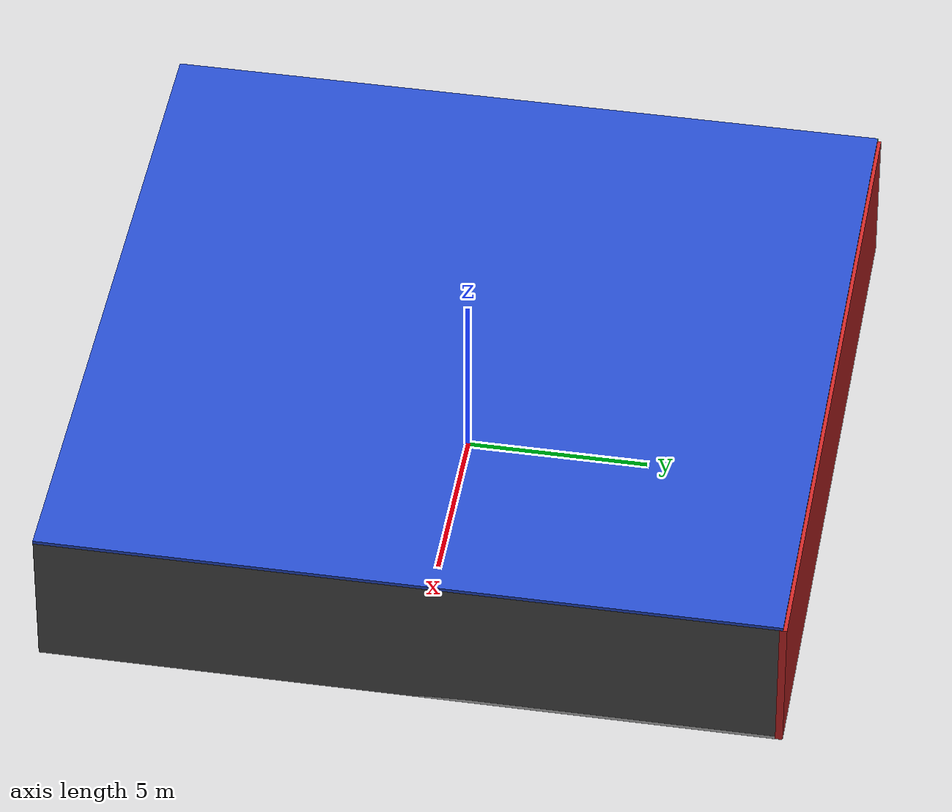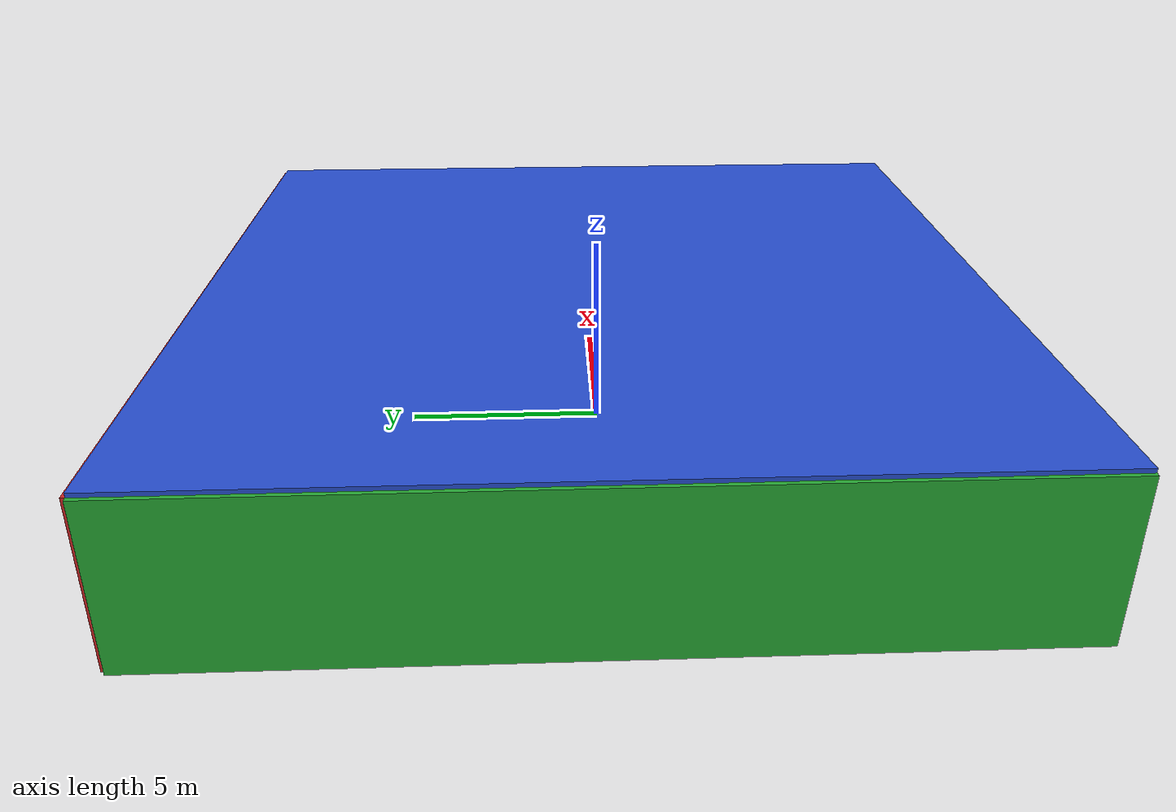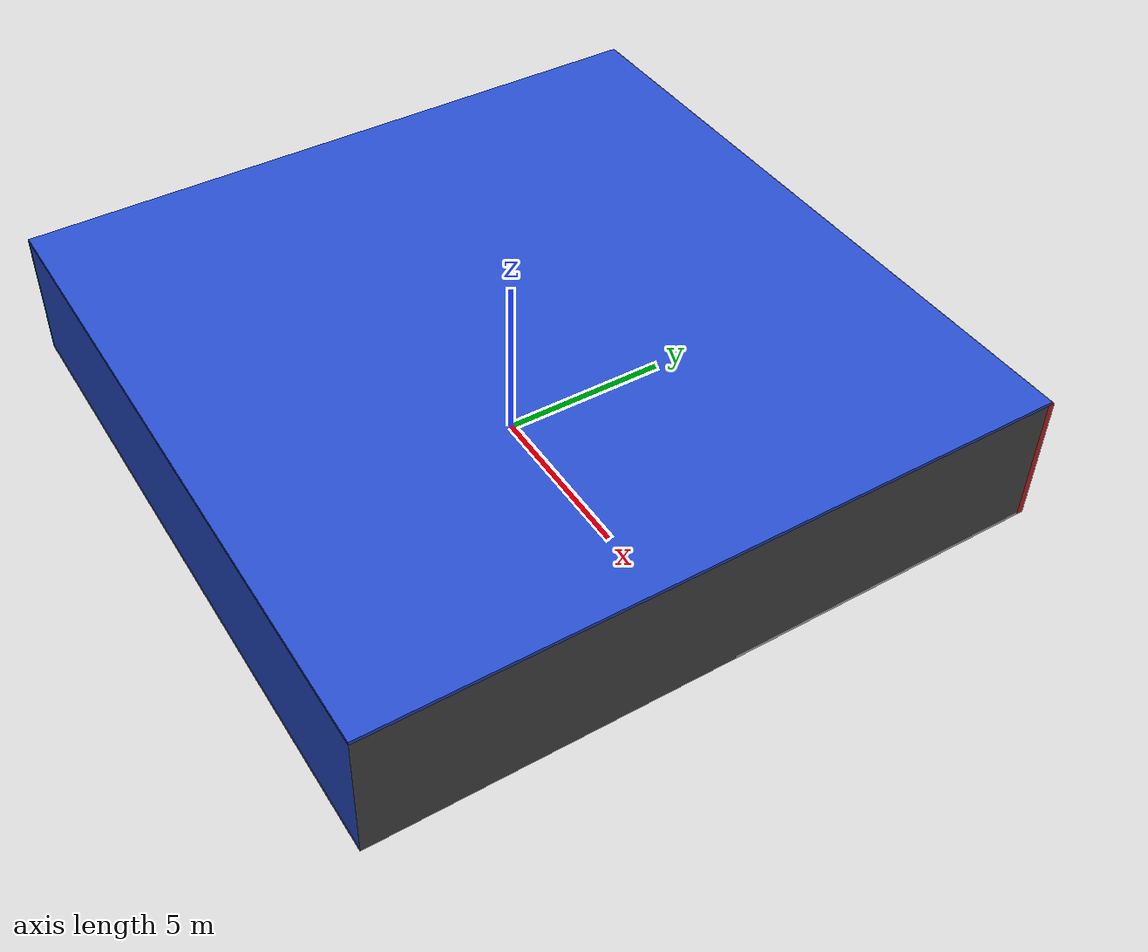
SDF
<sdf version="1.4">
 <world name="default">
  <physics type="ode">
   <max_step_size>0.001</max_step_size>
   <real_time_factor>1</real_time_factor>
   <real_time_update_rate>1000</real_time_update_rate>
   <gravity>0 0 -9.8</gravity>
  </physics>
  <scene><ambient>0.4 0.4 0.4 1</ambient><background>0.7 0.7 0.7 1</background><shadows>1</shadows></scene>
  <model name="Surrounding">
   <static>1</static>
   <link name="Ceiling">
    <collision name="Ceiling_Collision"><geometry><box><size>20 20 0.1</size></box></geometry></collision>
    <visual name="Ceiling_Visual">
     <geometry><box><size>20 20 0.1</size></box></geometry>
     <material>
      <script><uri>file://media/materials/scripts/gazebo.material</uri><name>Gazebo/BlueLaser</name></script>
     </material>
    </visual>
    <pose>0 0 4.05 0 0 0</pose>
   </link>
   <link name="Wall_South">
    <collision name="Wall_South_Collision">
     <geometry><box><size>20 0 4</size></box></geometry>
     <pose>0 0 2 0 -0 0</pose>
    </collision>
    <visual name="Wall_South_Visual">
     <pose>0 0 2 0 -0 0</pose>
     <geometry><box><size>20 0 4</size></box></geometry>
     <material>
      <script><uri>file://media/materials/scripts/gazebo.material</uri><name>Gazebo/BlueGlow</name></script>
     </material>
    </visual>
    <velocity_decay><linear>0</linear><angular>0</angular></velocity_decay>
    <pose>0 -10 0 0 -0 0</pose>
   </link>
   <link name="Wall_East">
    <collision name="Wall_21_Collision">
     <geometry><box><size>20 0 4</size></box></geometry>
     <pose>0 0 2 0 -0 0</pose>
    </collision>
    <visual name="Wall_21_Visual">
     <pose>0 0 2 0 -0 0</pose>
     <geometry><box><size>20 0 4</size></box></geometry>
     <material>
      <script><uri>file://media/materials/scripts/gazebo.material</uri><name>Gazebo/Road</name></script>
     </material>
    </visual>
    <velocity_decay><linear>0</linear><angular>0</angular></velocity_decay>
    <pose>10 0 0 0 -0 1.5708</pose>
   </link>
   <link name="Wall_North">
    <collision name="Wall_22_Collision">
     <geometry><box><size>20 0.2 4</size></box></geometry>
     <pose>0 0 2 0 -0 0</pose>
    </collision>
    <visual name="Wall_22_Visual">
     <pose>0 0 2 0 -0 0</pose>
     <geometry><box><size>20 0.2 4</size></box></geometry>
     <material>
      <script><uri>file://media/materials/scripts/gazebo.material</uri><name>Gazebo/Red</name></script>
     </material>
    </visual>
    <velocity_decay><linear>0</linear><angular>0</angular></velocity_decay>
    <pose>0 10 0 0 -0 0</pose>
   </link>
   <link name="Wall_West">
    <collision name="Wall_23_Collision">
     <geometry><box><size>20 0.2 4</size></box></geometry>
     <pose>0 0 2 0 -0 0</pose>
    </collision>
    <visual name="Wall_23_Visual">
     <pose>0 0 2 0 -0 0</pose>
     <geometry><box><size>20 0.2 4</size></box></geometry>
     <material>
      <script><uri>file://media/materials/scripts/gazebo.material</uri><name>Gazebo/GreenGlow</name></script>
     </material>
    </visual>
    <velocity_decay><linear>0</linear><angular>0</angular></velocity_decay>
    <pose>-10 0 0 0 0 -1.5708</pose>
   </link>
   <link name="Ground_link">
    <collision name="collision">
     <pose>0 0 .05 0 -0 0</pose>
     <geometry><box><size>20 20 0.1</size></box></geometry>
    </collision>
    <visual name="visual">
     <pose>0 0 .05 0 -0 0</pose>
     <geometry><box><size>20 20 0.1</size></box></geometry>
     <material>
      <script><uri>file://media/materials/scripts/gazebo.material</uri><name>Gazebo/LightOn</name></script>
     </material>
    </visual>
   </link>
   <static>1</static>
  </model>
  <spherical_coordinates>
   <surface_model>EARTH_WGS84</surface_model>
   <latitude_deg>0</latitude_deg>
   <longitude_deg>0</longitude_deg>
   <elevation>0</elevation>
   <heading_deg>0</heading_deg>
  </spherical_coordinates>
  <light name="lightball_0" type="diffuse">
   <diffuse>0.8 0.8 0.8 1</diffuse>
   <specular>0.2 0.2 0.2 1</specular>
   <attenuation>
    <range>100</range>
    <constant>0.7</constant>
    <linear>0.01</linear>
    <quadratic>0.001</quadratic>
   </attenuation>
   <direction>-0.5 0.1 -0.9</direction>
   <pose>-8.6334099551 9.20731109845 2.46612859043 0 0 0</pose>
  </light>
  <light name="lightball_1" type="diffuse">
   <diffuse>0.8 0.8 0.8 1</diffuse>
   <specular>0.2 0.2 0.2 1</specular>
   <attenuation>
    <range>100</range>
    <constant>0.7</constant>
    <linear>0.01</linear>
    <quadratic>0.001</quadratic>
   </attenuation>
   <direction>-0.5 0.1 -0.9</direction>
   <pose>-6.05711461969 -2.24850091929 3.64438718825 0 0 0</pose>
  </light>
  <light name="lightball_2" type="diffuse">
   <diffuse>0.8 0.8 0.8 1</diffuse>
   <specular>0.2 0.2 0.2 1</specular>
   <attenuation>
    <range>100</range>
    <constant>0.7</constant>
    <linear>0.01</linear>
    <quadratic>0.001</quadratic>
   </attenuation>
   <direction>-0.5 0.1 -0.9</direction>
   <pose>3.90489572967 3.96948739658 3.86165478081 0 0 0</pose>
  </light>
  <light name="lightball_3" type="diffuse">
   <diffuse>0.8 0.8 0.8 1</diffuse>
   <specular>0.2 0.2 0.2 1</specular>
   <attenuation>
    <range>100</range>
    <constant>0.7</constant>
    <linear>0.01</linear>
    <quadratic>0.001</quadratic>
   </attenuation>
   <direction>-0.5 0.1 -0.9</direction>
   <pose>-4.87427902895 -8.0400472073 2.87131200823 0 0 0</pose>
  </light>
  <light name="lightball_4" type="diffuse">
   <diffuse>0.8 0.8 0.8 1</diffuse>
   <specular>0.2 0.2 0.2 1</specular>
   <attenuation>
    <range>100</range>
    <constant>0.7</constant>
    <linear>0.01</linear>
    <quadratic>0.001</quadratic>
   </attenuation>
   <direction>-0.5 0.1 -0.9</direction>
   <pose>-2.21948049031 9.77558794223 2.53749981113 0 0 0</pose>
  </light>
  <light name="lightball_5" type="diffuse">
   <diffuse>0.8 0.8 0.8 1</diffuse>
   <specular>0.2 0.2 0.2 1</specular>
   <attenuation>
    <range>100</range>
    <constant>0.7</constant>
    <linear>0.01</linear>
    <quadratic>0.001</quadratic>
   </attenuation>
   <direction>-0.5 0.1 -0.9</direction>
   <pose>-5.6820347953 8.86884372947 0.928926102078 0 0 0</pose>
  </light>
  <light name="lightball_6" type="diffuse">
   <diffuse>0.8 0.8 0.8 1</diffuse>
   <specular>0.2 0.2 0.2 1</specular>
   <attenuation>
    <range>100</range>
    <constant>0.7</constant>
    <linear>0.01</linear>
    <quadratic>0.001</quadratic>
   </attenuation>
   <direction>-0.5 0.1 -0.9</direction>
   <pose>1.52790947372 -0.167388188107 0.53232642741 0 0 0</pose>
  </light>
  <include><uri>model://table</uri><pose>-4.03846893729 -8.33158586849 0 0 0 1.57140923662</pose></include>
  <include><uri>model://table</uri><pose>-4.9918219471 -4.81929413042 0 0 0 2.58060150695</pose></include>
  <include><uri>model://table</uri><pose>-4.80935298761 1.8112649373 0 0 0 1.7105987579</pose></include>
  <include><uri>model://table</uri><pose>-1.82464239531 -5.60864599977 0 0 0 3.03877405706</pose></include>
  <include><uri>model://cabinet</uri><pose>-2.55956621134 -1.98110455075 0 0 0 1.86898794196</pose></include>
  <include>
   <uri>model://construction_cone</uri>
   <pose>3.75874966287 -3.81948308665 0 0 0 1.8938330405</pose>
  </include>
  <include><uri>model://table</uri><pose>4.3362838234 4.73071422407 0 0 0 0.760476583894</pose></include>
  <include><uri>model://table</uri><pose>6.31213097725 -7.88592934304 0 0 0 1.21468459233</pose></include>
 </world>
</sdf>

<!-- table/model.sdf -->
<sdf version="1.5">
  <model name="table">
    <static>true</static>
    <link name="link">
      <collision name="surface">
        <pose>0 0 1.0 0 0 0</pose>
        <geometry>
          <box>
            <size>1.5 0.8 0.03</size>
          </box>
        </geometry>
        <surface>
          <friction>
            <ode>
              <mu>0.6</mu>
              <mu2>0.6</mu2>
            </ode>
          </friction>
        </surface>
      </collision>
      <visual name="visual1">
        <pose>0 0 1.0 0 0 0</pose>
        <geometry>
          <box>
            <size>1.5 0.8 0.03</size>
          </box>
        </geometry>
        <material>
          <script>
            <uri>model://media/materials/scripts/gazebo.material</uri>
            <name>Gazebo/Wood</name>
          </script>
        </material>
      </visual>
      <collision name="front_left_leg">
        <pose>0.68 0.38 0.5 0 0 0</pose>
        <geometry>
          <cylinder>
            <radius>0.02</radius>
            <length>1.0</length>
          </cylinder>
        </geometry>
      </collision>
      <visual name="front_left_leg">
        <pose>0.68 0.38 0.5 0 0 0</pose>
        <geometry>
          <cylinder>
            <radius>0.02</radius>
            <length>1.0</length>
          </cylinder>
        </geometry>
        <material>
          <script>
            <uri>model://media/materials/scripts/gazebo.material</uri>
            <name>Gazebo/Grey</name>
          </script>
        </material>
      </visual>
      <collision name="front_right_leg">
        <pose>0.68 -0.38 0.5 0 0 0</pose>
        <geometry>
          <cylinder>
            <radius>0.02</radius>
            <length>1.0</length>
          </cylinder>
        </geometry>
      </collision>
      <visual name="front_right_leg">
        <pose>0.68 -0.38 0.5 0 0 0</pose>
        <geometry>
          <cylinder>
            <radius>0.02</radius>
            <length>1.0</length>
          </cylinder>
        </geometry>
        <material>
          <script>
            <uri>model://media/materials/scripts/gazebo.material</uri>
            <name>Gazebo/Grey</name>
          </script>
        </material>
      </visual>
      <collision name="back_right_leg">
        <pose>-0.68 -0.38 0.5 0 0 0</pose>
        <geometry>
          <cylinder>
            <radius>0.02</radius>
            <length>1.0</length>
          </cylinder>
        </geometry>
      </collision>
      <visual name="back_right_leg">
        <pose>-0.68 -0.38 0.5 0 0 0</pose>
        <geometry>
          <cylinder>
            <radius>0.02</radius>
            <length>1.0</length>
          </cylinder>
        </geometry>
        <material>
          <script>
            <uri>model://media/materials/scripts/gazebo.material</uri>
            <name>Gazebo/Grey</name>
          </script>
        </material>
      </visual>
      <collision name="back_left_leg">
        <pose>-0.68 0.38 0.5 0 0 0</pose>
        <geometry>
          <cylinder>
            <radius>0.02</radius>
            <length>1.0</length>
          </cylinder>
        </geometry>
      </collision>
      <visual name="back_left_leg">
        <pose>-0.68 0.38 0.5 0 0 0</pose>
        <geometry>
          <cylinder>
            <radius>0.02</radius>
            <length>1.0</length>
          </cylinder>
        </geometry>
        <material>
          <script>
            <uri>model://media/materials/scripts/gazebo.material</uri>
            <name>Gazebo/Grey</name>
          </script>
        </material>
      </visual>
    </link>
  </model>
</sdf>

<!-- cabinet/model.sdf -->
<sdf version="1.5">
  <model name="cabinet">
    <static>true</static>
    <link name="cabinet_bottom_plate">
      <inertial>
        <pose>0 0 -1 0 0 0</pose>
        <inertia>
          <ixx>2.050000</ixx>
          <ixy>0</ixy>
          <ixz>0</ixz>
          <iyy>2.050000</iyy>
          <iyz>0</iyz>
          <izz>2.050000</izz>
        </inertia>
        <mass>25.000000</mass>
      </inertial>
      <collision name="cabinet_bottom_plate_geom">
        <pose>0 0 0.010000 0 0 0</pose>
        <geometry>
          <box>
            <size>0.450000 0.450000 0.020000</size>
          </box>
        </geometry>
      </collision>
      <visual name="cabinet_bottom_plate_geom_visual">
        <pose>0 0 0.010000 0 0 0</pose>
        <geometry>
          <box>
            <size>0.450000 0.450000 0.020000</size>
          </box>
        </geometry>
        <material>
          <script>
            <uri>model://media/materials/scripts/gazebo.material</uri>
            <name>Gazebo/Wood</name>
          </script>
        </material>
      </visual>
      <collision name="cabinet_bottom_plate_geom_cabinet_back_plate">
        <pose>0.235000 0 0.510000 0 0 0</pose>
        <geometry>
          <box>
            <size>0.020000 0.450000 1.020000</size>
          </box>
        </geometry>
      </collision>
      <visual name="cabinet_bottom_plate_geom_cabinet_back_plate_visual">
        <pose>0.235000 0 0.510000 0 0 0</pose>
        <geometry>
          <box>
            <size>0.020000 0.450000 1.020000</size>
          </box>
        </geometry>
        <material>
          <script>
            <uri>model://media/materials/scripts/gazebo.material</uri>
            <name>Gazebo/Wood</name>
          </script>
        </material>
      </visual>
      <collision name="cabinet_bottom_plate_geom_cabinet_left_plate">
        <pose>0 0.235000 0.510000 0 0 0</pose>
        <geometry>
          <box>
            <size>0.450000 0.020000 1.020000</size>
          </box>
        </geometry>
      </collision>
      <visual name="cabinet_bottom_plate_geom_cabinet_left_plate_visual">
        <pose>0 0.235000 0.510000 0 0 0</pose>
        <geometry>
          <box>
            <size>0.450000 0.020000 1.020000</size>
          </box>
        </geometry>
        <material>
          <script>
            <uri>model://media/materials/scripts/gazebo.material</uri>
            <name>Gazebo/Wood</name>
          </script>
        </material>
      </visual>
      <collision name="cabinet_bottom_plate_geom_cabinet_middle_plate">
        <pose>0 0 0.510000 0 0 0</pose>
        <geometry>
          <box>
            <size>0.450000 0.450000 0.020000</size>
          </box>
        </geometry>
      </collision>
      <visual name="cabinet_bottom_plate_geom_cabinet_middle_plate_visual">
        <pose>0 0 0.510000 0 0 0</pose>
        <geometry>
          <box>
            <size>0.450000 0.450000 0.020000</size>
          </box>
        </geometry>
        <material>
          <script>
            <uri>model://media/materials/scripts/gazebo.material</uri>
            <name>Gazebo/Wood</name>
          </script>
        </material>
      </visual>
      <collision name="cabinet_bottom_plate_geom_cabinet_right_plate">
        <pose>0 -0.235000 0.510000 0 0 0</pose>
        <geometry>
          <box>
            <size>0.450000 0.020000 1.020000</size>
          </box>
        </geometry>
      </collision>
      <visual name="cabinet_bottom_plate_geom_cabinet_right_plate_visual">
        <pose>0 -0.235000 0.510000 0 0 0</pose>
        <geometry>
          <box>
            <size>0.450000 0.020000 1.020000</size>
          </box>
        </geometry>
        <material>
          <script>
            <uri>model://media/materials/scripts/gazebo.material</uri>
            <name>Gazebo/Wood</name>
          </script>
        </material>
      </visual>
      <collision name="cabinet_bottom_plate_geom_cabinet_top_plate">
        <pose>0 0 1.010000 0 0 0</pose>
        <geometry>
          <box>
            <size>0.450000 0.450000 0.020000</size>
          </box>
        </geometry>
      </collision>
      <visual name="cabinet_bottom_plate_geom_cabinet_top_plate_visual">
        <pose>0 0 1.010000 0 0 0</pose>
        <geometry>
          <box>
            <size>0.450000 0.450000 0.020000</size>
          </box>
        </geometry>
        <material>
          <script>
            <uri>model://media/materials/scripts/gazebo.material</uri>
            <name>Gazebo/Wood</name>
          </script>
        </material>
      </visual>
    </link>
  </model>
</sdf>

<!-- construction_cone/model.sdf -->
<sdf version="1.5">
  <model name="Construction Cone">
    <link name="link">
      <collision name="collision">
        <geometry>
          <mesh>
            <scale>10 10 10</scale>
            <uri>file://isr-testbed/construction_cone/meshes/construction_cone.dae</uri>
          </mesh>
        </geometry>
      </collision>
      <visual name="visual">
        <geometry>
          <mesh>
            <scale>10 10 10</scale>
            <uri>file://isr-testbed/construction_cone/meshes/construction_cone.dae</uri>
          </mesh>
        </geometry>
      </visual>
    </link>
  </model>
</sdf>
